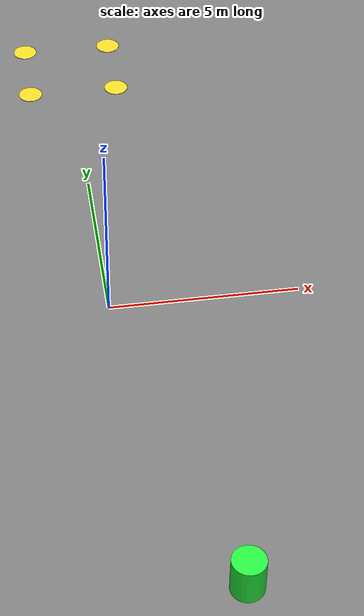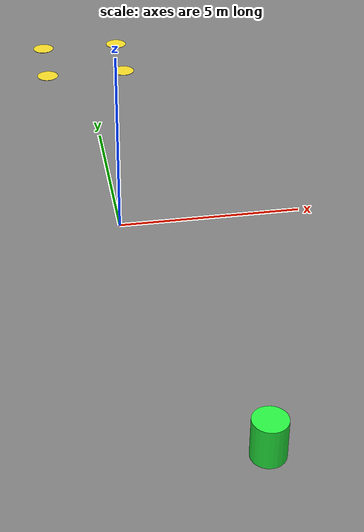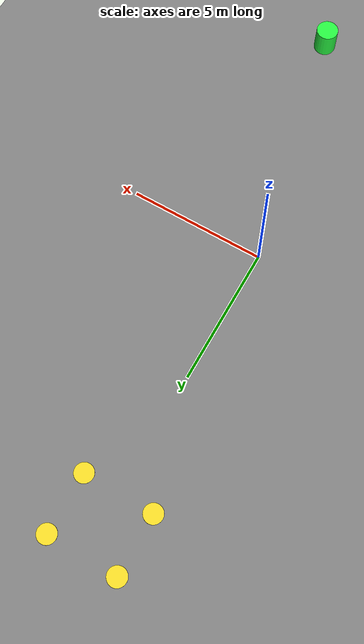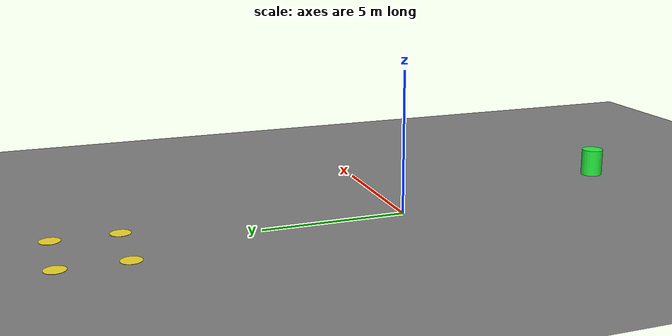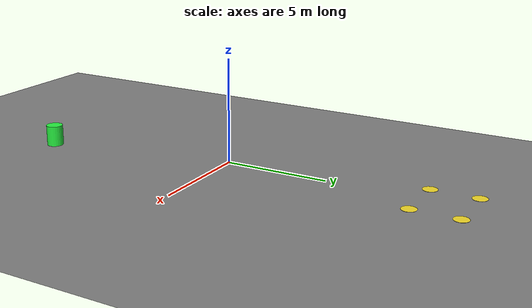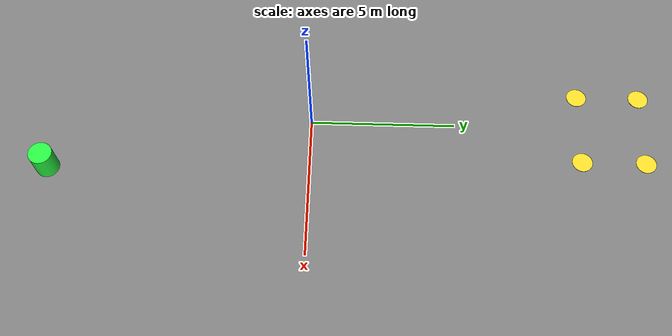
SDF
<sdf version="1.9">
 <world name="rmuc_2025_field">
  <physics type="ode">
   <max_step_size>0.004</max_step_size>
   <real_time_factor>1.0</real_time_factor>
   <real_time_update_rate>250</real_time_update_rate>
  </physics>
  <plugin name="gz::sim::systems::Physics" filename="gz-sim-physics-system"/>
  <plugin name="gz::sim::systems::UserCommands" filename="gz-sim-user-commands-system"/>
  <plugin name="gz::sim::systems::SceneBroadcaster" filename="gz-sim-scene-broadcaster-system"/>
  <plugin name="gz::sim::systems::Contact" filename="gz-sim-contact-system"/>
  <plugin name="gz::sim::systems::Imu" filename="gz-sim-imu-system"/>
  <plugin name="gz::sim::systems::AirPressure" filename="gz-sim-air-pressure-system"/>
  <plugin name="gz::sim::systems::ApplyLinkWrench" filename="gz-sim-apply-link-wrench-system"/>
  <plugin name="gz::sim::systems::NavSat" filename="gz-sim-navsat-system"/>
  <plugin name="gz::sim::systems::Sensors" filename="gz-sim-sensors-system">
   <render_engine>ogre2</render_engine>
  </plugin>
  <gravity>0 0 -9.8</gravity>
  <magnetic_field>6e-06 2.3e-05 -4.2e-05</magnetic_field>
  <atmosphere type="adiabatic"/>
  <scene>
   <grid>false</grid>
   <ambient>0.4 0.4 0.4 1</ambient>
   <background>0.7 0.7 0.7 1</background>
   <shadows>true</shadows>
  </scene>
  <light name="sunUTC" type="directional">
   <pose>0 0 500 0 -0 0</pose>
   <intensity>1</intensity>
   <direction>0.001 0.625 -0.78</direction>
   <diffuse>0.904 0.904 0.904 1</diffuse>
   <specular>0.271 0.271 0.271 1</specular>
   <attenuation><range>2000</range><linear>0</linear><constant>1</constant><quadratic>0</quadratic></attenuation>
   <spot><inner_angle>0</inner_angle><outer_angle>0</outer_angle><falloff>0</falloff></spot>
  </light>
  <spherical_coordinates>
   <surface_model>EARTH_WGS84</surface_model>
   <world_frame_orientation>ENU</world_frame_orientation>
   <latitude_deg>47.397971057728974</latitude_deg>
   <longitude_deg>8.546163739800146</longitude_deg>
   <elevation>0</elevation>
  </spherical_coordinates>
  <model name="ground_plane">
   <static>true</static>
   <link name="link">
    <collision name="collision">
     <geometry><plane><normal>0 0 1</normal><size>1 1</size></plane></geometry>
    </collision>
    <visual name="visual">
     <geometry><plane><normal>0 0 1</normal><size>100 100</size></plane></geometry>
     <material>
      <ambient>0.5 0.5 0.5 1</ambient>
      <diffuse>0.5 0.5 0.5 1</diffuse>
      <specular>0.5 0.5 0.5 1</specular>
     </material>
    </visual>
   </link>
  </model>
  <model name="pad_1">
   <static>true</static>
   <pose>1.3 9.4 0.012 0 0 0</pose>
   <link name="link">
    <visual name="visual">
     <geometry><cylinder><radius>0.35</radius><length>0.01</length></cylinder></geometry>
     <material>
      <ambient>0.85 0.75 0.1 1</ambient>
      <diffuse>0.95 0.85 0.15 1</diffuse>
      <emissive>0.5 0.42 0.05 1</emissive>
     </material>
    </visual>
   </link>
  </model>
  <model name="pad_2">
   <static>true</static>
   <pose>-1.3 9.4 0.012 0 0 0</pose>
   <link name="link">
    <visual name="visual">
     <geometry><cylinder><radius>0.35</radius><length>0.01</length></cylinder></geometry>
     <material>
      <ambient>0.85 0.75 0.1 1</ambient>
      <diffuse>0.95 0.85 0.15 1</diffuse>
      <emissive>0.5 0.42 0.05 1</emissive>
     </material>
    </visual>
   </link>
  </model>
  <model name="pad_3">
   <static>true</static>
   <pose>1.3 11.6 0.012 0 0 0</pose>
   <link name="link">
    <visual name="visual">
     <geometry><cylinder><radius>0.35</radius><length>0.01</length></cylinder></geometry>
     <material>
      <ambient>0.85 0.75 0.1 1</ambient>
      <diffuse>0.95 0.85 0.15 1</diffuse>
      <emissive>0.5 0.42 0.05 1</emissive>
     </material>
    </visual>
   </link>
  </model>
  <model name="pad_4">
   <static>true</static>
   <pose>-1.3 11.6 0.012 0 0 0</pose>
   <link name="link">
    <visual name="visual">
     <geometry><cylinder><radius>0.35</radius><length>0.01</length></cylinder></geometry>
     <material>
      <ambient>0.85 0.75 0.1 1</ambient>
      <diffuse>0.95 0.85 0.15 1</diffuse>
      <emissive>0.5 0.42 0.05 1</emissive>
     </material>
    </visual>
   </link>
  </model>
  <model name="target_marker">
   <static>true</static>
   <pose>2.0 -9.0 0.5 0 0 0</pose>
   <link name="link">
    <collision name="collision">
     <geometry><cylinder><radius>0.4</radius><length>1.0</length></cylinder></geometry>
    </collision>
    <visual name="visual">
     <geometry><cylinder><radius>0.4</radius><length>1.0</length></cylinder></geometry>
     <material>
      <ambient>0.1 0.8 0.2 1</ambient>
      <diffuse>0.15 0.95 0.25 1</diffuse>
      <emissive>0.1 0.6 0.15 1</emissive>
     </material>
    </visual>
   </link>
  </model>
 </world>
</sdf>
